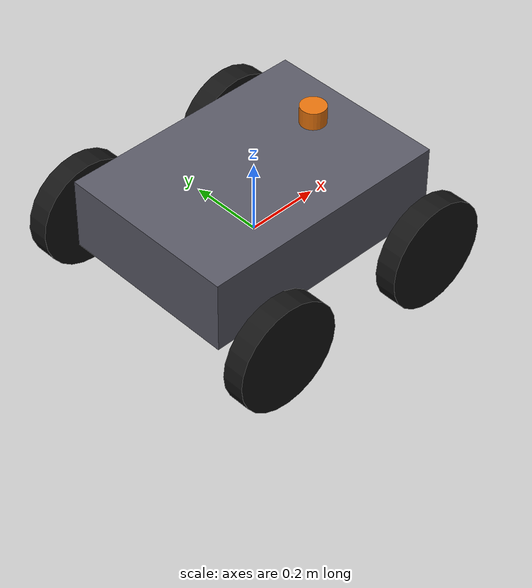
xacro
<?xml version="1.0"?>
<robot name="rover" xmlns:xacro="http://www.ros.org/wiki/xacro">

  <xacro:arg name="ns" default=""/>
  <xacro:arg name="odometry" default="wheels"/>

  <xacro:property name="wheel_radius" value="0.15"/>
  <xacro:property name="wheel_width" value="0.06"/>
  <xacro:property name="wheel_separation" value="0.70"/>
  <xacro:property name="wheelbase" value="0.50"/>
  <xacro:property name="chassis_x" value="0.70"/>
  <xacro:property name="chassis_y" value="0.50"/>
  <xacro:property name="chassis_z" value="0.20"/>
  <xacro:property name="chassis_mass" value="10.0"/>
  <xacro:property name="wheel_mass" value="1.0"/>

  <material name="chassis_grey"><color rgba="0.35 0.35 0.4 1"/></material>
  <material name="wheel_black"><color rgba="0.08 0.08 0.08 1"/></material>
  <material name="lidar_orange"><color rgba="0.9 0.45 0.05 1"/></material>

  <!-- ============================ chassis ============================ -->
  <link name="body_link">
    <visual>
      <origin xyz="0 0 ${chassis_z/2}" rpy="0 0 0"/>
      <geometry><box size="${chassis_x} ${chassis_y} ${chassis_z}"/></geometry>
      <material name="chassis_grey"/>
    </visual>
    <collision>
      <origin xyz="0 0 ${chassis_z/2}" rpy="0 0 0"/>
      <geometry><box size="${chassis_x} ${chassis_y} ${chassis_z}"/></geometry>
    </collision>
    <inertial>
      <mass value="${chassis_mass}"/>
      <origin xyz="0 0 ${chassis_z/2}" rpy="0 0 0"/>
      <inertia ixx="0.2417" iyy="0.4417" izz="0.6167" ixy="0" ixz="0" iyz="0"/>
    </inertial>
  </link>

  <!-- ============================ wheel macro ============================ -->
  <xacro:macro name="wheel" params="name x_off y_off">
    <link name="${name}_link">
      <visual>
        <origin xyz="0 0 0" rpy="1.5708 0 0"/>
        <geometry><cylinder radius="${wheel_radius}" length="${wheel_width}"/></geometry>
        <material name="wheel_black"/>
      </visual>
      <collision>
        <origin xyz="0 0 0" rpy="1.5708 0 0"/>
        <geometry><cylinder radius="${wheel_radius}" length="${wheel_width}"/></geometry>
      </collision>
      <inertial>
        <mass value="${wheel_mass}"/>
        <!-- symmetry axis is Y (rolling axis) -->
        <inertia ixx="0.005925" iyy="0.01125" izz="0.005925" ixy="0" ixz="0" iyz="0"/>
      </inertial>
    </link>

    <joint name="${name}_joint" type="continuous">
      <parent link="body_link"/>
      <child link="${name}_link"/>
      <origin xyz="${x_off} ${y_off} 0" rpy="0 0 0"/>
      <axis xyz="0 1 0"/>
      <dynamics damping="0.1" friction="0.05"/>
    </joint>
  </xacro:macro>

  <xacro:wheel name="wheel1" x_off="${wheelbase/2}"  y_off="${-wheel_separation/2}"/> <!-- front-right -->
  <xacro:wheel name="wheel2" x_off="${wheelbase/2}"  y_off="${wheel_separation/2}"/>  <!-- front-left  -->
  <xacro:wheel name="wheel3" x_off="${-wheelbase/2}" y_off="${wheel_separation/2}"/>  <!-- rear-left   -->
  <xacro:wheel name="wheel4" x_off="${-wheelbase/2}" y_off="${-wheel_separation/2}"/> <!-- rear-right  -->

  <!-- ============================ lidar ============================ -->
  <link name="lidar_link">
    <visual>
      <geometry><cylinder radius="0.035" length="0.05"/></geometry>
      <material name="lidar_orange"/>
    </visual>
    <collision>
      <geometry><cylinder radius="0.035" length="0.05"/></geometry>
    </collision>
    <inertial>
      <mass value="0.2"/>
      <inertia ixx="0.0000867" iyy="0.0000867" izz="0.00009" ixy="0" ixz="0" iyz="0"/>
    </inertial>
  </link>

  <joint name="lidar_joint" type="fixed">
    <parent link="body_link"/>
    <child link="lidar_link"/>
    <origin xyz="0.2 0 ${chassis_z + 0.05}" rpy="0 0 0"/>
  </joint>

  <xacro:if value="${'$(arg ns)' != ''}">
    <link name="mast_link">
      <visual>
        <origin xyz="0 0 0.15" rpy="0 0 0"/>
        <geometry><box size="0.12 0.12 0.30"/></geometry>
        <material name="lidar_orange"/>
      </visual>
      <collision>
        <origin xyz="0 0 0.15" rpy="0 0 0"/>
        <geometry><box size="0.12 0.12 0.30"/></geometry>
      </collision>
      <inertial>
        <mass value="0.2"/>
        <origin xyz="0 0 0.15" rpy="0 0 0"/>
        <inertia ixx="0.00174" iyy="0.00174" izz="0.00048" ixy="0" ixz="0" iyz="0"/>
      </inertial>
    </link>
    <joint name="mast_joint" type="fixed">
      <parent link="body_link"/>
      <child link="mast_link"/>
      <origin xyz="-0.28 0 ${chassis_z}" rpy="0 0 0"/>
    </joint>
  </xacro:if>

  <xacro:include filename="$(find rover_description)/urdf/gazebo.xacro"/>

</robot>

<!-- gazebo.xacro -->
<robot xmlns:xacro="http://www.ros.org/wiki/xacro">

  <xacro:property name="skid_steer_track_factor" value="1.32"/>

  <!-- "" for the single robot, "robot1/" etc. in the fleet (xacro arg ns) -->
  <xacro:property name="ns" value="$(arg ns)"/>
  <xacro:property name="prefix" value="${ns + '/' if ns else ''}"/>
  <xacro:property name="truth_odom" value="${'$(arg odometry)' == 'truth'}"/>
  <!-- Fleet robots carry a mast behind the lidar (rover.urdf.xacro), so their
       scan leaves out the 20 degrees behind: a robot never sees its own mast. -->
  <xacro:property name="lidar_half_fov" value="${2.96706 if ns else 3.14159}"/>
  <xacro:property name="lidar_samples" value="${340 if ns else 360}"/>

  <gazebo>
    <plugin filename="gz-sim-diff-drive-system" name="gz::sim::systems::DiffDrive">
      <left_joint>wheel2_joint</left_joint>
      <left_joint>wheel3_joint</left_joint>
      <right_joint>wheel1_joint</right_joint>
      <right_joint>wheel4_joint</right_joint>

      <wheel_separation>${wheel_separation * skid_steer_track_factor}</wheel_separation>
      <wheel_radius>${wheel_radius}</wheel_radius>

      <max_linear_velocity>1.0</max_linear_velocity>
      <min_linear_velocity>-1.0</min_linear_velocity>
      <max_angular_velocity>1.2</max_angular_velocity>
      <min_angular_velocity>-1.2</min_angular_velocity>
      <max_linear_acceleration>1.0</max_linear_acceleration>
      <min_linear_acceleration>-1.0</min_linear_acceleration>
      <max_angular_acceleration>2.0</max_angular_acceleration>
      <min_angular_acceleration>-2.0</min_angular_acceleration>

      <topic>${prefix}cmd_vel</topic>
      <odom_topic>${prefix}odom</odom_topic>
      <!-- with odometry:=truth this TF goes to an unbridged topic; the
           OdometryPublisher below provides odom -> body_link instead -->
      <tf_topic>${prefix + ('wheel_tf' if truth_odom else 'tf')}</tf_topic>
      <frame_id>${prefix}odom</frame_id>
      <child_frame_id>${prefix}body_link</child_frame_id>
      <odom_publish_frequency>50</odom_publish_frequency>
    </plugin>

    <!-- Keep this plugin even where nothing reads its topic (the fleet doesn't
         bridge it): without it, the DiffDrive odometry above goes badly wrong. -->
    <plugin filename="gz-sim-joint-state-publisher-system" name="gz::sim::systems::JointStatePublisher">
      <topic>${prefix}joint_states</topic>
      <joint_name>wheel1_joint</joint_name>
      <joint_name>wheel2_joint</joint_name>
      <joint_name>wheel3_joint</joint_name>
      <joint_name>wheel4_joint</joint_name>
    </plugin>
  </gazebo>

  <xacro:if value="${ns != ''}">
    <gazebo>
      <plugin filename="gz-sim-odometry-publisher-system" name="gz::sim::systems::OdometryPublisher">
        <odom_frame>${prefix + 'odom' if truth_odom else 'world'}</odom_frame>
        <robot_base_frame>${prefix}body_link</robot_base_frame>
        <odom_topic>${prefix}ground_truth</odom_topic>
        <tf_topic>${prefix + ('tf' if truth_odom else 'ground_truth_tf')}</tf_topic>
        <odom_publish_frequency>${50 if truth_odom else 10}</odom_publish_frequency>
        <dimensions>2</dimensions>
      </plugin>
    </gazebo>
  </xacro:if>

  <gazebo reference="lidar_link">
    <sensor name="lidar" type="gpu_lidar">
      <pose>0 0 0 0 0 0</pose>
      <topic>${prefix}scan</topic>
      <gz_frame_id>${prefix}lidar_link</gz_frame_id>
      <update_rate>10</update_rate>
      <always_on>true</always_on>
      <visualize>true</visualize>
      <lidar>
        <scan>
          <horizontal>
            <samples>${lidar_samples}</samples>
            <resolution>1</resolution>
            <min_angle>${-lidar_half_fov}</min_angle>
            <max_angle>${lidar_half_fov}</max_angle>
          </horizontal>
          <vertical>
            <samples>1</samples>
            <resolution>1</resolution>
            <min_angle>0</min_angle>
            <max_angle>0</max_angle>
          </vertical>
        </scan>
        <range>
          <min>0.12</min>
          <max>10.0</max>
          <resolution>0.01</resolution>
        </range>
        <noise>
          <type>gaussian</type>
          <mean>0.0</mean>
          <stddev>0.01</stddev>
        </noise>
      </lidar>
    </sensor>
  </gazebo>

</robot>
